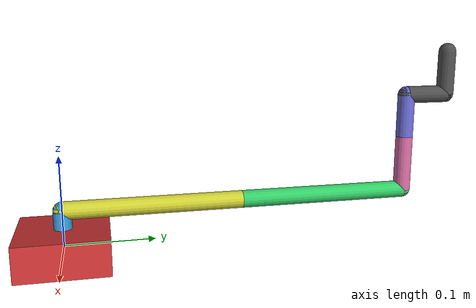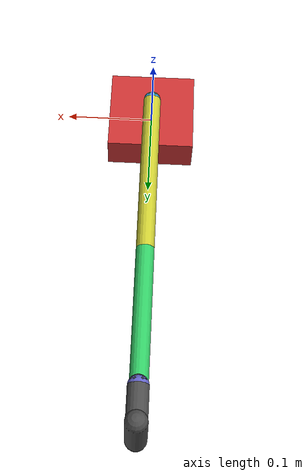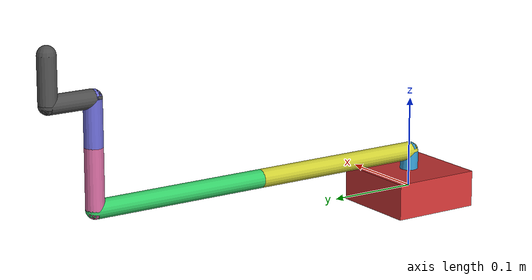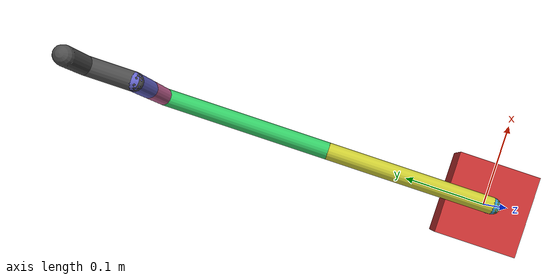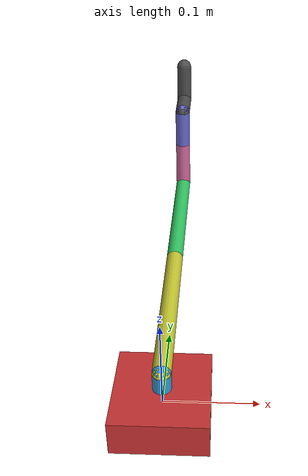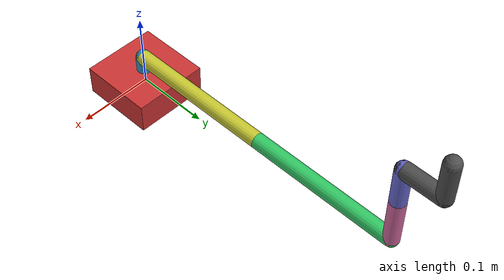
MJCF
<mujoco model="gello_arm">
    <compiler angle="degree" />
    <option timestep="0.01" />

    <worldbody>
        <body name="base" pos="0 0 0">
            <geom type="box" size="0.05 0.05 0.02" rgba="0.8 0.2 0.2 1" />

            <body name="link1" pos="0 0 0.02">
                <joint name="q1" type="hinge" axis="0 0 1" range="-235 35" />
                <geom type="capsule" size="0.01 0.02" fromto="0 0 0 0 0 0.02" rgba="0.2 0.6 0.8 1" />

                <body name="link2" pos="0 0 0.02">
                    <joint name="q2" type="hinge" axis="1 0 0" range="0 135" />
                    <geom type="capsule" size="0.01 0.2" fromto="0 0 0 0 0.2 0" rgba="0.8 0.8 0.2 1" />

                    <body name="link3" pos="0 0.2 0">
                        <joint name="q3" type="hinge" axis="1 0 0" range="-135 0" />
                        <geom type="capsule" size="0.01 0.2" fromto="0 0 0 0 0.2 0" rgba="0.2 0.8 0.4 1" />

                        <body name="link4" pos="0 0.2 0">
                            <joint name="q4" type="hinge" axis="1 0 0" range="-202.5 22.5" />
                            <geom type="capsule" size="0.01 0.065" fromto="0 0 0 0 0 0.065" rgba="0.8 0.4 0.6 1" />

                            <body name="link5" pos="0 0 0.065">
                                <joint name="q5" type="hinge" axis="0 0 1" range="-90 90" />
                                <geom type="capsule" size="0.01 0.05" fromto="0 0 0 0 0 0.05" rgba="0.4 0.4 0.8 1" />

                                <body name="link6" pos="0 0 0.05">
                                    <joint name="q6" type="hinge" axis="0 1 0" range="-202.5 22.5" />
                                    <geom type="capsule" size="0.01 0.05" fromto="0 0.05 0 0 0 0" rgba="0.3 0.3 0.3 1" />

                                    <body name="link7" pos="0 0.05 0">
                                        <geom type="capsule" size="0.01 0.05" fromto="0 0 0 0 0 0.05" rgba="0.3 0.3 0.3 1" />
                                    </body>

                                </body>
                            </body>
                        </body>
                    </body>
                </body>
            </body>
        </body>
    </worldbody>

    <actuator>
        <motor joint="q1" ctrlrange="-1 1" />
        <motor joint="q2" ctrlrange="-1 1" />
        <motor joint="q3" ctrlrange="-1 1" />
        <motor joint="q4" ctrlrange="-1 1" />
        <motor joint="q5" ctrlrange="-1 1" />
    </actuator>
</mujoco>
